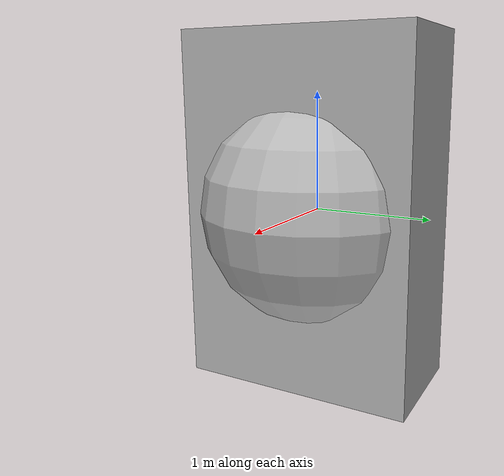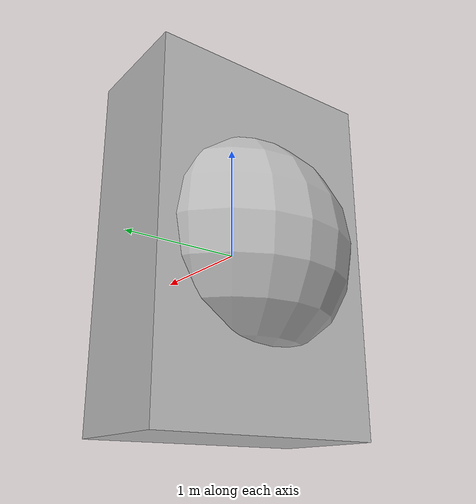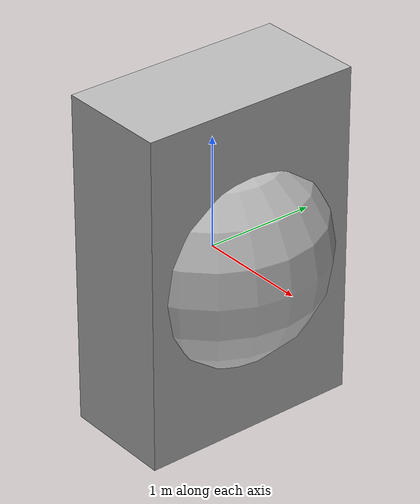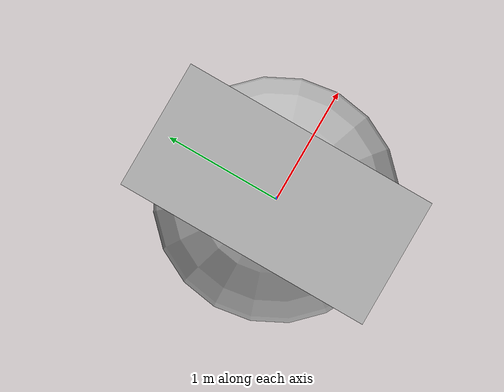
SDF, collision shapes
<sdf version='1.6'>
  <model name='test_robot'>

    <link name='link1'>
      <!-- We will denote this link frame as `L1`.
           Since there is no pose and no joints referring to this link,
           X_ML1 will be identity. -->
      <visual name='link1_visual1'>
        <geometry>
          <sphere>
            <radius>1.0</radius>
          </sphere>
        </geometry>
      </visual>
      <visual name='link1_visual2'>
        <geometry>
          <mesh>
            <uri>tri_cube.obj</uri>
          </mesh>
        </geometry>
      </visual>

      <collision name = 'link1_collision1'>
        <pose>0.0 0.0 0.0 0.0 0.0 0.0</pose>
        <geometry>
          <plane>
            <normal>1.0 2.0 3.0</normal>
          </plane>
        </geometry>
        <surface>
          <friction>
            <ode>
              <mu>0.8</mu>
              <mu2>0.3</mu2>
            </ode>
          </friction>
        </surface>
      </collision>

      <collision name = 'link1_collision2'>
        <geometry>
          <sphere>
            <radius>1.0</radius>
          </sphere>
        </geometry>
        <surface>
          <friction>
            <ode>
              <mu>1.5</mu>
              <mu2>0.6</mu2>
            </ode>
          </friction>
        </surface>
      </collision>
    </link>

    <link name='link2'>
      <visual name='link2_visual1'>
        <geometry>
          <sphere>
            <radius>1.0</radius>
          </sphere>
        </geometry>
      </visual>
      <visual name='link2_visual2'>
        <geometry>
          <cylinder>
            <radius>0.5</radius>
            <length>2.0</length>
          </cylinder>
        </geometry>
      </visual>
      <visual name='link2_visual3'>
        <geometry>
          <plane>
            <normal>1 2 3</normal>
          </plane>
        </geometry>
      </visual>
      <collision name='link2_collision'>
        <geometry>
          <empty/>
        </geometry>
      </collision>
    </link>

    <link name='link3'>
      <visual name='link3_visual1'>
        <geometry>
          <empty/>
        </geometry>
      </visual>
      <collision name = 'link3_collision'>
        <geometry>
          <box>
            <size>1.0 2.0 3.0</size>
          </box>
        </geometry>
      </collision>
    </link>

    <!-- Ensure we can weld to the world. -->
    <joint name='weld_link1' type='fixed'>
      <parent>world</parent>
      <child>link1</child>
    </joint>

    <!-- Test frames -->
    <!-- We will define this frame as `F1`. -->
    <frame name='model_scope_link1_frame'>
      <!-- This pose represents `X_L1F1`. -->
      <pose frame='link1'>0.1 0.2 0.3 0.4 0.5 0.6</pose>
    </frame>
    <!-- We will define this frame as `F2`. -->
    <frame name='model_scope_link1_frame_child'>
      <!-- This pose represents `X_F1F2`. -->
      <pose frame='model_scope_link1_frame'>0.1 0 0 0 0 0</pose>
    </frame>
    <!-- We will define this frame as `F3`.
         NOTE: An unnamed frame implies this element's parent frame. At model
         scope, this implies the model frame. -->
    <frame name='model_scope_model_frame_implicit'>
      <!-- This pose represents `X_MF3`. -->
      <pose>0.7 0.8 0.9 0 0 0</pose>
    </frame>
    <!-- We will define this frame as `F4`. -->
    <frame name='model_scope_world_frame'>
      <!-- This pose represents `X_WF4`. -->
      <pose frame='world'>1.1 1.2 1.3 0 0 0</pose>
    </frame>

    <!-- For now at least, We care only that Drake's custom tag doesn't break
         parsing the rest of the elements in this file. -->
    <collision_filter_group name="filter_group1">
      <member link="link1"/>
      <member link="link2"/>
    </collision_filter_group>
  </model>
</sdf>
